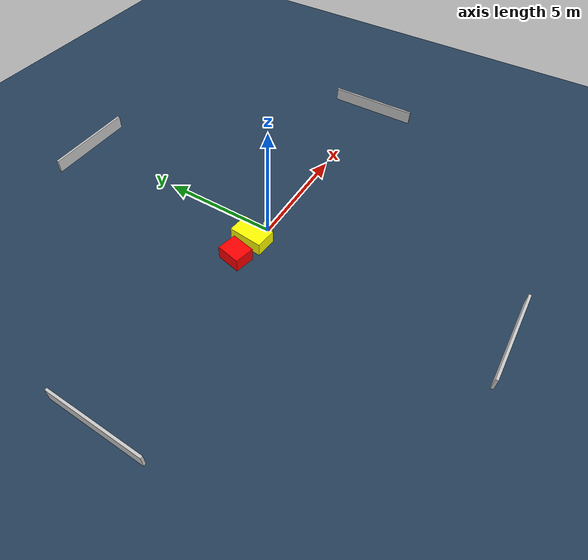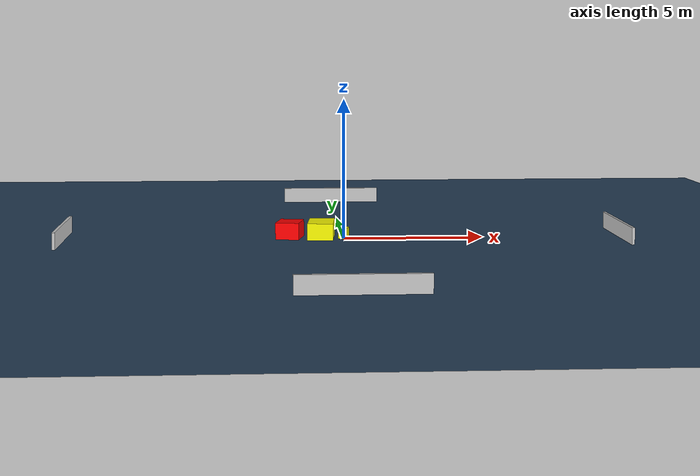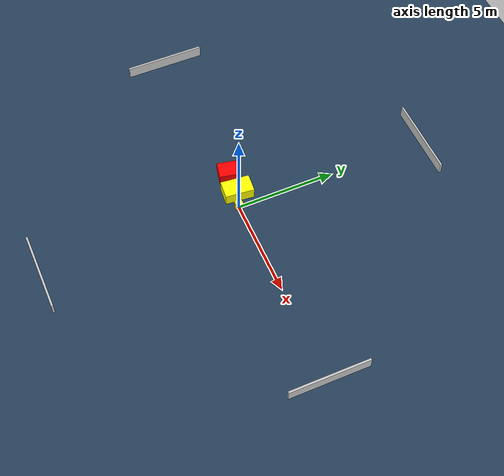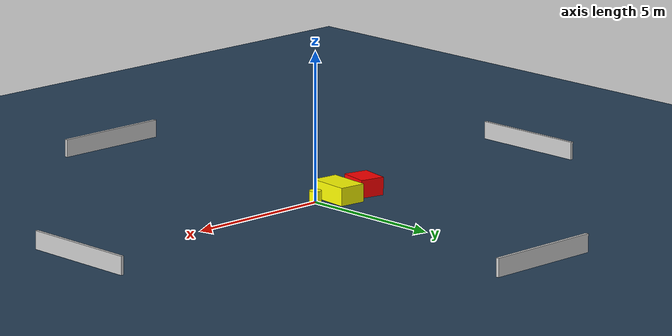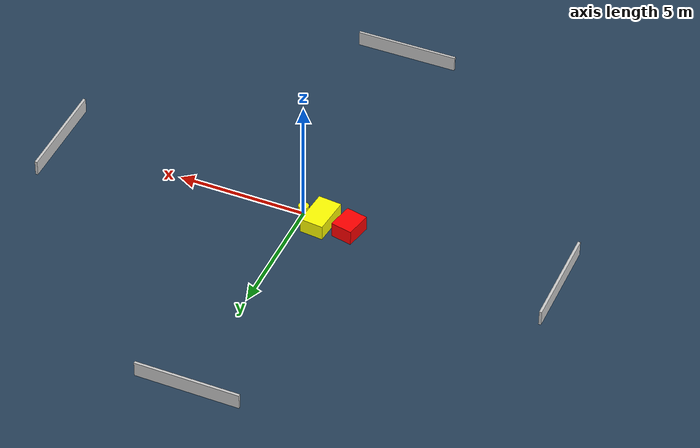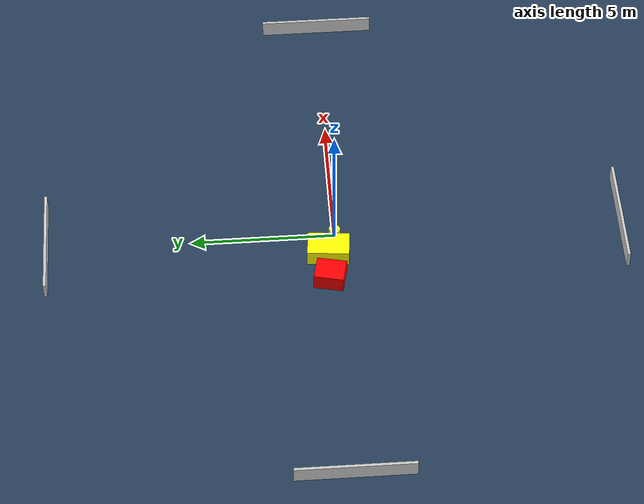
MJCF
<?xml version="1.0" ?>
<mujoco model="generated_environment">
  <option timestep="0.01" integrator="RK4" cone="elliptic"/>
  <default>
    <geom density="1"/>
  </default>
  <asset>
    <texture builtin="gradient" height="3072" name="skybox" rgb1="0.3 0.5 0.7" rgb2="0 0 0" type="skybox" width="512"/>
    <texture builtin="checker" height="300" name="groundplane" rgb1="0.2 0.3 0.4" rgb2="0.1 0.2 0.3" type="2d" width="300"/>
    <material name="groundplane" reflectance="0.2" texrepeat="5 5" texture="groundplane"/>
  </asset>
  <worldbody>
    <light dir="0 0 -1" directional="true" pos="0 0 1.5"/>
    <geom condim="3" friction="0.5 0.005 0.001" material="groundplane" name="floor" pos="0 0 0" size="0 0 0.05" type="plane"/>
    <body name="walls">
      <geom name="wall_1" condim="4" pos="-10.0 0.0 0.3" rgba="0.800000011920929 0.800000011920929 0.800000011920929 1.0" size="0.05 2.0 0.3" type="box"/>
      <geom name="wall_2" condim="4" pos="10.0 0.0 0.3" rgba="0.800000011920929 0.800000011920929 0.800000011920929 1.0" size="0.05 2.0 0.3" type="box"/>
      <geom name="wall_3" condim="4" pos="0.0 -10.0 0.3" rgba="0.800000011920929 0.800000011920929 0.800000011920929 1.0" size="2.0 0.05 0.3" type="box"/>
      <geom name="wall_4" condim="4" pos="0.0 10.0 0.3" rgba="0.800000011920929 0.800000011920929 0.800000011920929 1.0" size="2.0 0.05 0.3" type="box"/>
    </body>
    <body name="robot">
      <joint name="joint_x" type="slide" pos="0 0 0" axis="1 0 0"/>
      <joint name="joint_y" type="slide" pos="0 0 0" axis="0 1 0"/>
      <geom name="robot" type="cylinder" pos="0.0 0.0 0.2" size="0.2 0.2 0.0" mass="5.0" friction="1.0 0.005 0.0001" condim="4" rgba="1.0 1.0 0.0 1.0"/>
    </body>
    <body name="obstacle_1_movable">
      <geom name="obstacle_1_movable" condim="4" pos="-0.7959475517858017 0.2586585062231704 0.3" euler="0 0 354.5991726662156" friction="0.0 0.005 0.001" rgba="1.0 1.0 0.0 1.0" size="0.4554077589718999 0.7236215801692036 0.3" type="box" mass="0.1"/>
      <joint type="free"/>
    </body>
    <body name="obstacle_2_static">
      <geom name="obstacle_2_static" condim="4" pos="-1.9295326935329813 0.2722115410399096 0.3" euler="0 0 347.9102110603245" friction="0.0 0.005 0.001" rgba="1.0 0.0 0.0 1.0" size="0.4223707406560845 0.5115710019384069 0.3" type="box"/>
    </body>
  </worldbody>
  <actuator>
    <motor name="actuator_x" joint="joint_x" gear="1" ctrlrange="-1 1"/>
    <motor name="actuator_y" joint="joint_y" gear="1" ctrlrange="-1 1"/>
  </actuator>
</mujoco>
